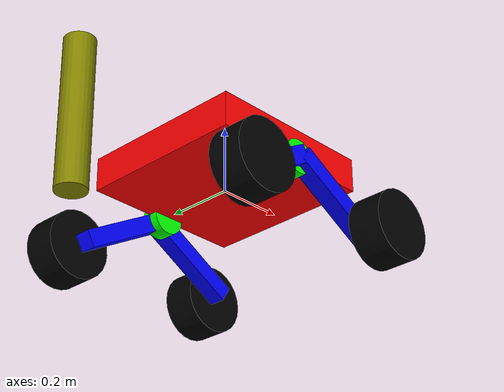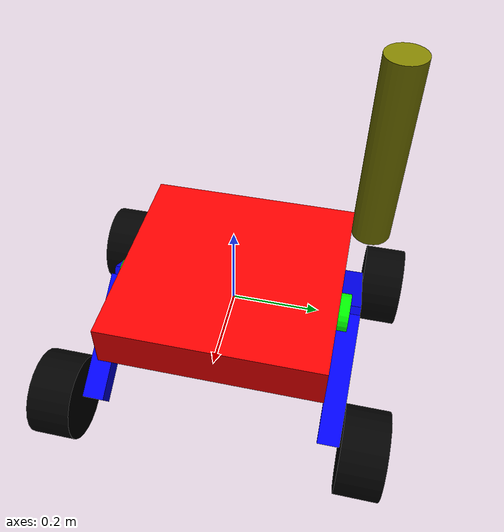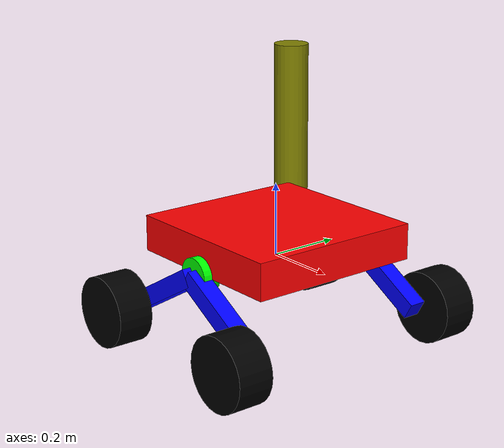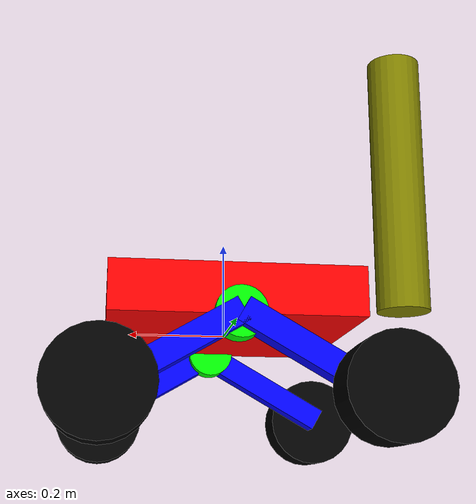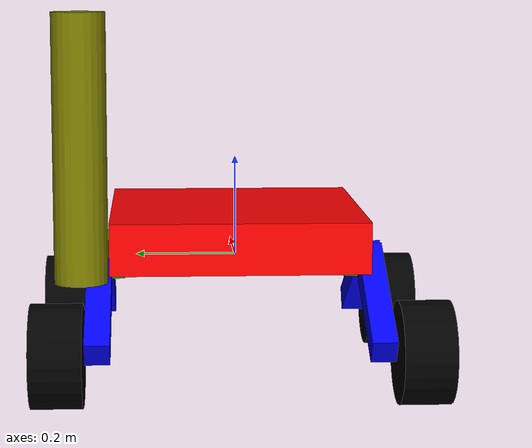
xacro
<?xml version="1.0" encoding="UTF-8" standalone="yes"?>
<robot name="asbathama" xmlns:xacro="http://www.ros.org/wiki/xacro">

	<xacro:include filename="/home/go4av05/build_ws/src/rover_description/asbathama_urdf/asbathama_gazebo.xml"/>

	<xacro:property name="base_length" value="0.5" />
	<xacro:property name="base_width" value="0.5" />
	<xacro:property name="base_height" value="0.1" />
	<xacro:property name="mass_base" value="30.0" />

	<!-- all materials here -->

	<material name="green">
		<color rgba="0.0 1.0 0.0 1.0"/>
	</material>
	<material name="blue">
		<color rgba="0.0 0.0 1.0 1.0"/>
	</material>
	<material name="red">
		<color rgba="1.0 0.0 0.0 1.0"/>
	</material>
	<material name="black">
		<color rgba="0 0.0 0 1"/>
	</material>
	<material name="new">
		<color rgba="0.5 0.5 0 1"/>
	</material>

<!-- inertial tags here -->

	<xacro:macro name="box_inertia" params="m l w h xyz rpy">
    	<inertial>
        	<origin  xyz="${xyz}" rpy="${rpy}" />
        	<mass value="${m}"/>
        	<inertia ixx="${(float(m)/12)*(float(h)*float(h) + float(l)*float(l))}" ixy="0.0" ixz="0.0"
                 iyy="${(float(m)/12)*(float(w)*float(w) + float(l)*float(l))}" iyz="0.0"
                 izz="${(float(m)/12)*(float(w)*float(w) + float(h)*float(h))}"/>
    	</inertial>
	</xacro:macro>

	<xacro:macro name="suspension_inertia" params="m r xyz rpy">
		<inertial>
    		<inertia ixx="${(1/4)*float(m)*float(r)*float(r)}" ixy="0.0" ixz="0.0"
             iyy="${(1/4)*float(m)*float(r)*float(r)}" iyz="0.0"
             izz="${(1/2)*float(m)*float(r)*float(r)}"/>
    		<mass value="${m}"/>
			<origin xyz="${xyz}" rpy="${rpy}"/>
		</inertial>
	</xacro:macro>

	<xacro:macro name="leg_inertia" params="m l xyz rpy">
		<inertial>
    		<inertia ixx="${(1/3)*float(m)*float(l)*float(l)}" ixy="0.0" ixz="0.0"
                     iyy="0.0" iyz="0.0"
                     izz="${(1/3)*float(m)*float(l)*float(l)}"/>
    		<mass value="${m}"/>
			<origin xyz="${xyz}" rpy="${rpy}"/>
		</inertial>
	</xacro:macro>

    <xacro:macro name="wheel_inertia" params="m r h xyz rpy">
        <inertial>
            <origin xyz="${xyz}" rpy="${rpy}" />
            <mass value="${m}" />
            <inertia ixx="${(float(m)/12) * (3*float(r)*float(r) + float(h)*float(h))}" ixy="0" ixz="0"
                     iyy="${(float(m)/12) * (3*float(r)*float(r) + float(h)*float(h))}" iyz="0"
                     izz="${(float(m)/2) * (float(r)*float(r))}" />
        </inertial>
    </xacro:macro>

	<!-- all links here -->

	<link name="base_footprint"/>

	<link name="base_link">
    <visual>
        <geometry>
            <box size="${base_length} ${base_width} ${base_height}"></box>
        </geometry>

        <origin xyz="0.0 0.0 0.05" rpy="0.0 0.0 0.0"/>

        <material name="red"/>

    </visual>
	<collision>
		<geometry>
            <box size="${base_length} ${base_width} ${base_height}"></box>
        </geometry>

        <origin xyz="0.0 0.0 0.05" rpy="0.0 0.0 0.0"/>
	</collision>
    <xacro:box_inertia m="${mass_base}" l="${base_height}" w="${base_width}" h="${base_length}"
                       xyz="0.0 0.0 0.0" rpy="0 0 0" />
	</link>

	<link name="antenna">
		<visual>
			<geometry>
				<cylinder radius="0.05" length="0.5"/>
			</geometry>
			<origin xyz="0.0 0.0 0.25" rpy="0.0 0.0 0.0"/>
			<material name="new"/>

		</visual>
		<collision>
			<geometry>
				<cylinder radius="0.05" length="0.5"/>
			</geometry>
			<origin xyz="0.0 0.0 0.25" rpy="0.0 0.0 0.0"/>
		</collision>
	</link>

	<link name="left_suspension_link">
		<visual>
			<geometry>
				<cylinder radius="0.05" length="0.05"/>
			</geometry>

			<origin xyz="0.0 0.0 0.0" rpy="${pi/2} 0.0 0.0"/>

			<material name="green"/>

		</visual>
		<collision>
			<geometry>
				<cylinder radius="0.05" length="0.05"/>
			</geometry>

			<origin xyz="0.0 0.0 0.0" rpy="${pi/2} 0.0 0.0"/>
		</collision>
		<xacro:suspension_inertia m="3" r="0.05" xyz="0.0 0.0 0.0" rpy="${pi/2} 0.0 0.0"/>

	</link>

	<link name="right_suspension_link">
		<visual>
			<geometry>
				<cylinder radius="0.05" length="0.05"/>
			</geometry>

			<origin xyz="0.0 0.0 0.0" rpy="${pi/2} 0.0 0.0"/>

			<material name="green"/>

		</visual>
		<collision>
			<geometry>
				<cylinder radius="0.05" length="0.05"/>
			</geometry>

			<origin xyz="0.0 0.0 0.0" rpy="${pi/2} 0.0 0.0"/>
		</collision>
		<xacro:suspension_inertia m="3" r="0.05" xyz="0 0 0" rpy="${pi/2} 0.0 0.0"/>

	</link>

	<link name="fl_leg">
		<visual>
			<geometry>
				<box size="0.3 0.05 0.05"></box>
			</geometry>

			<origin xyz="0.15 -0.025 0" rpy="0.0 0.0 0.0"/>

			<material name="blue"/>

		</visual>
		<collision>
			<geometry>
				<box size="0.3 0.05 0.05"></box>
			</geometry>

			<origin xyz="0.15 -0.025 0" rpy="0.0 0.0 0.0"/>
		</collision>
		<xacro:leg_inertia m="5" l="0.3" xyz="0.15 -0.025 0" rpy="0.0 0.0 0.0"/>

	</link>
	<link name="fl_wheel">
		<visual>
			<geometry>
				<cylinder radius="0.1" length="0.1"/>
			</geometry>

			<origin xyz="0.0 -0.1 0" rpy="${pi/2} 0.0 0.0"/>

			<material name="black"/>

		</visual>
		<collision>
			<geometry>
				<cylinder radius="0.1" length="0.1"/>
			</geometry>

			<origin xyz="0.0 -0.1 0" rpy="${pi/2} 0.0 0.0"/>
		</collision>
		<xacro:wheel_inertia m="5" r="0.1" h="0.1" xyz="0 0 0" rpy="${pi/2} 0.0 0.0"/> <!-- y val-->
	</link>

	<link name="fr_leg">
		<visual>
			<geometry>
				<box size="0.3 0.05 0.05"></box>
			</geometry>

			<origin xyz="0.15 0.025 0" rpy="0.0 0.0 0.0"/>

			<material name="blue"/>

		</visual>
		<collision>
			<geometry>
				<box size="0.3 0.05 0.05"></box>
			</geometry>

			<origin xyz="0.15 0.025 0" rpy="0.0 0.0 0.0"/>
		</collision>
		<xacro:leg_inertia m="5" l="0.3" xyz="0.15 0.025 0" rpy="0.0 0.0 0.0"/>

	</link>
	<link name="fr_wheel">
		<visual>
			<geometry>
				<cylinder radius="0.1" length="0.1"/>
			</geometry>

			<origin xyz="0.0 0.1 0" rpy="${pi/2} 0.0 0.0"/>

			<material name="black"/>

		</visual>
		<collision>
			<geometry>
				<cylinder radius="0.1" length="0.1"/>
			</geometry>

			<origin xyz="0.0 0.1 0" rpy="${pi/2} 0.0 0.0"/>
		</collision>
		<xacro:wheel_inertia m="5" r="0.1" h="0.1" xyz="0 0 0" rpy="${pi/2} 0.0 0.0"/>
	</link>

	<link name="bl_leg">
		<visual>
			<geometry>
				<box size="0.3 0.05 0.05"></box>
			</geometry>

			<origin xyz="-0.15 -0.025 0" rpy="0 0 0.0"/>

			<material name="blue"/>

		</visual>
		<collision>
			<geometry>
				<box size="0.3 0.05 0.05"></box>
			</geometry>

			<origin xyz="-0.15 -0.025 0" rpy="0 0 0.0"/>
		</collision>
		<xacro:leg_inertia m="5" l="0.3" xyz="-0.15 -0.025 0" rpy="0 0 0.0"/>

	</link>
	<link name="bl_wheel">
		<visual>
			<geometry>
				<cylinder radius="0.1" length="0.1"/>
			</geometry>

			<origin xyz="0.0 -0.1 0" rpy="${pi/2} 0.0 0.0"/>

			<material name="black"/>

		</visual>
		<collision>
			<geometry>
				<cylinder radius="0.1" length="0.1"/>
			</geometry>

			<origin xyz="0.0 -0.1 0" rpy="${pi/2} 0.0 0.0"/>
		</collision>
		<xacro:wheel_inertia m="5" r="0.1" h="0.1" xyz="0 0 0" rpy="${pi/2} 0.0 0.0"/>

	</link>

	<link name="br_leg">
		<visual>
			<geometry>
				<box size="0.3 0.05 0.05"></box>
			</geometry>

			<origin xyz="-0.15 0.025 0" rpy="0.0 0.0 0.0"/>

			<material name="blue"/>

		</visual>
		<collision>
			<geometry>
				<box size="0.3 0.05 0.05"></box>
			</geometry>

			<origin xyz="-0.15 0.025 0" rpy="0.0 0.0 0.0"/>
		</collision>
		<xacro:leg_inertia m="5" l="0.3" xyz="-0.15 0.025 0" rpy="0.0 0.0 0.0"/>

	</link>
	<link name="br_wheel">
		<visual>
			<geometry>
				<cylinder radius="0.1" length="0.1"/>
			</geometry>

			<origin xyz="0.0 0.1 0" rpy="${pi/2} 0.0 0.0"/>

			<material name="black"/>

		</visual>
		<collision>
			<geometry>
				<cylinder radius="0.1" length="0.1"/>
			</geometry>

			<origin xyz="0.0 0.1 0" rpy="${pi/2} 0.0 0.0"/>
		</collision>
		<xacro:wheel_inertia m="5" r="0.1" h="0.1" xyz="0 0 0" rpy="${pi/2} 0.0 0.0"/>

	</link>

	<!-- all joints here -->

	<joint name="base_footprint" type="fixed">
     <parent link="base_footprint"/>
     <child link="base_link"/>
   </joint>

	<joint name="antenna_joint" type="fixed">
		<parent link="base_link"/>
		<child link="antenna"/>
		<origin xyz="-0.3 0.3 0.0" rpy="0.0 0.0 0.0"/>
	</joint>

	<joint name="left_suspension" type="fixed">
		<parent link="base_link"/>
		<child link="left_suspension_link"/>
		<origin xyz="0 ${-base_width / 2.0} 0.0" rpy="0.0 0.0 0.0"/>
	</joint>
	<joint name="right_suspension" type="fixed">
		<parent link="base_link"/>
		<child link="right_suspension_link"/>
		<origin xyz="0 ${base_width / 2.0} 0.0" rpy="0.0 0.0 0.0"/>
	</joint>
	<joint name="left_suspension_f_leg" type="fixed">
		<parent link="left_suspension_link"/>
		<child link="fl_leg"/>
		<origin xyz="0 0 0" rpy="0 0.523 0"/>
	</joint>
	<joint name="left_suspension_b_leg" type="fixed">
		<parent link="left_suspension_link"/>
		<child link= "bl_leg"/>
		<origin xyz="0 0 0" rpy="0.0 -0.523 0.0"/>
	</joint>
	<joint name="right_suspension_f_leg" type="fixed">
		<parent link="right_suspension_link"/>
		<child link="fr_leg"/>
		<origin xyz="0 0 0" rpy="0.0 0.523 0.0"/>
	</joint>
	<joint name="right_suspension_b_leg" type="fixed">
		<parent link="right_suspension_link"/>
		<child link= "br_leg"/>
		<origin xyz="0 0 0" rpy="0.0 -0.523 0.0"/>
	</joint>

	<joint name="fl_wheel_joint" type="continuous">
		<parent link="fl_leg"/>
		<child link="fl_wheel"/>
		<origin xyz="0.3 0.0 0.0" rpy="0.0 0.0 0.0"/>
		<axis xyz="0.0 1.0 0.0"/>

	</joint>
	<joint name="fr_wheel_joint" type="continuous">
		<parent link="fr_leg"/>
		<child link="fr_wheel"/>
		<origin xyz="0.3 0.0 0.0" rpy="0.0 0.0 0.0"/>
		<axis xyz="0.0 1.0 0.0"/>

	</joint>
	<joint name="bl_wheel_joint" type="continuous">
		<parent link="bl_leg"/>
		<child link="bl_wheel"/>
		<origin xyz="-0.3 0.0 0.0" rpy="0.0 0.0 0.0"/>
		<axis xyz="0.0 1.0 0.0"/>

	</joint>
	<joint name="br_wheel_joint" type="continuous">
		<parent link="br_leg"/>
		<child link="br_wheel"/>
		<origin xyz="-0.3 0.0 0.0" rpy="0.0 0.0 0.0"/>
		<axis xyz="0.0 1.0 0.0"/>

	</joint>

</robot>
